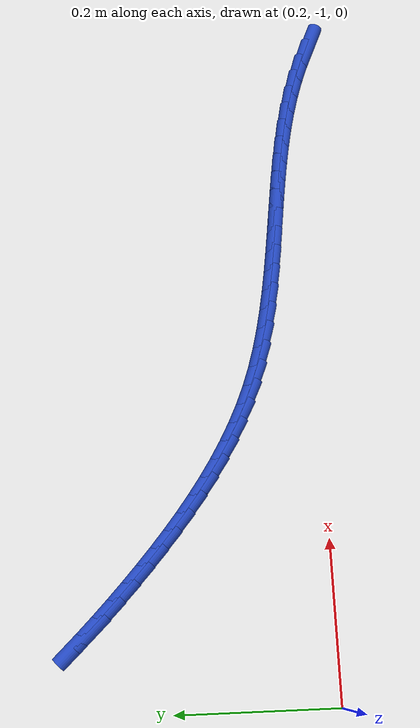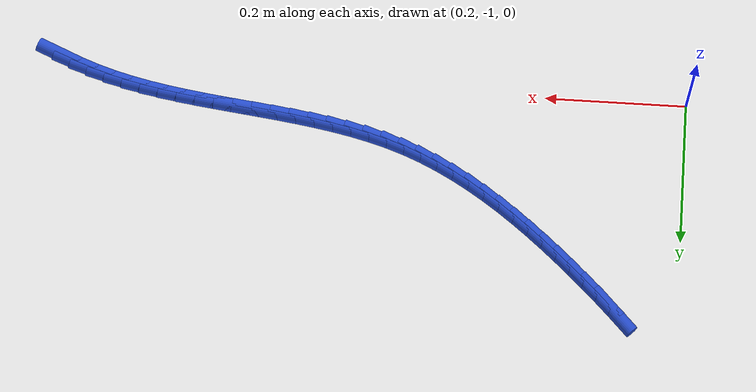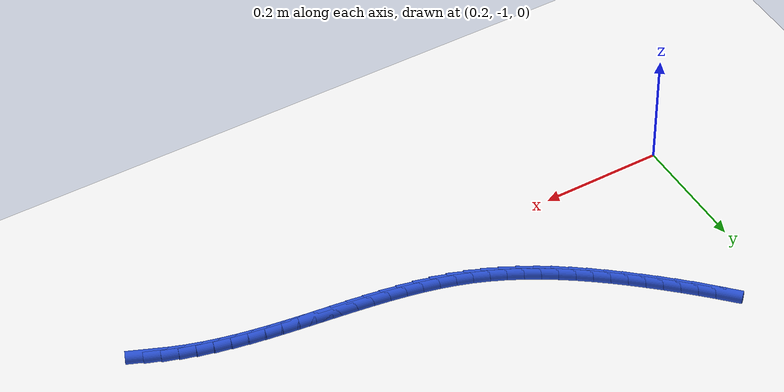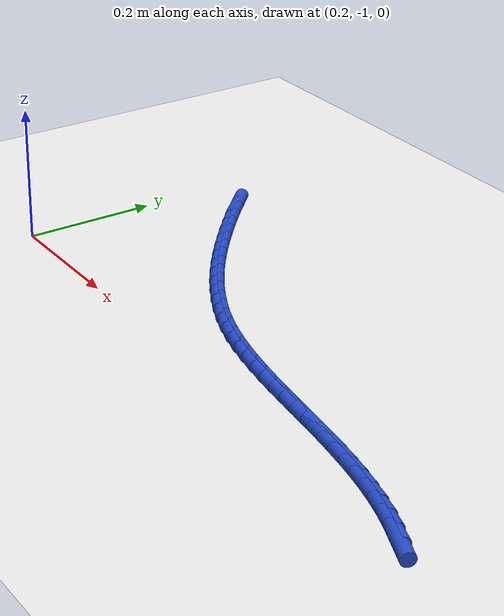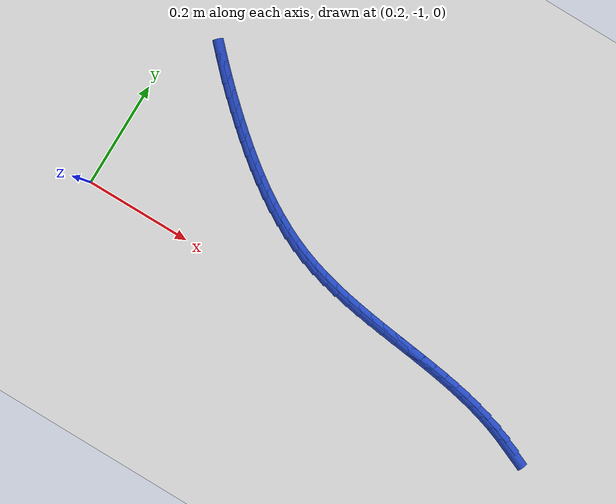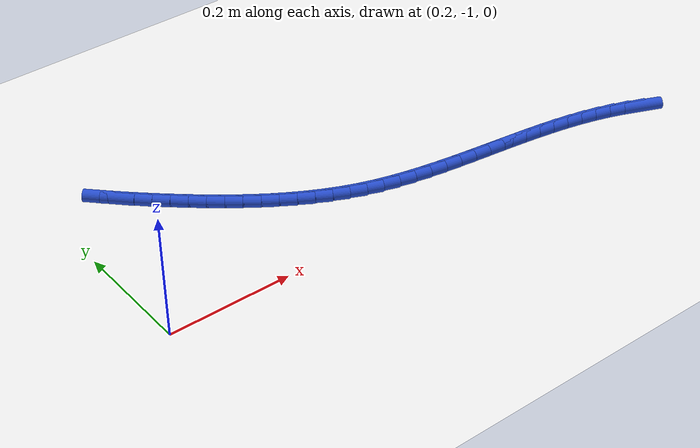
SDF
<sdf version="1.6">
 <world name="default">
  <model name="ground_plane">
   <static>1</static>
   <link name="link">
    <collision name="collision">
     <geometry><plane><normal>0 0 1</normal><size>100 100</size></plane></geometry>
     <surface><friction><ode><mu>100</mu><mu2>50</mu2></ode></friction></surface>
    </collision>
    <visual name="visual">
     <cast_shadows>0</cast_shadows>
     <geometry><plane><normal>0 0 1</normal><size>100 100</size></plane></geometry>
     <material>
      <script><uri>file://media/materials/scripts/gazebo.material</uri><name>Gazebo/WhiteGlow</name></script>
     </material>
    </visual>
   </link>
  </model>
  <model name="line">
   <link name="link_208">
    <pose>1.0852184880680888 -1.0177279663651415 0.01 0 1.57 -0.3993857675906334</pose>
    <collision name="collision">
     <geometry><cylinder><radius>0.01</radius><length>0.08</length></cylinder></geometry>
    </collision>
    <visual name="visual">
     <material>
      <script><name>Gazebo/Blue</name><uri>file://media/materials/scripts/gazebo.material</uri></script>
     </material>
     <geometry><cylinder><radius>0.01</radius><length>0.08</length></cylinder></geometry>
    </visual>
   </link>
   <link name="link_209">
    <pose>1.0610164979543173 -1.0075130474599463 0.01 0 1.57 -0.35031816591687853</pose>
    <collision name="collision">
     <geometry><cylinder><radius>0.01</radius><length>0.08</length></cylinder></geometry>
    </collision>
    <visual name="visual">
     <material>
      <script><name>Gazebo/Blue</name><uri>file://media/materials/scripts/gazebo.material</uri></script>
     </material>
     <geometry><cylinder><radius>0.01</radius><length>0.08</length></cylinder></geometry>
    </visual>
   </link>
   <link name="link_210">
    <pose>1.036431180504294 -0.9985298405195767 0.01 0 1.57 -0.30028902593777157</pose>
    <collision name="collision">
     <geometry><cylinder><radius>0.01</radius><length>0.08</length></cylinder></geometry>
    </collision>
    <visual name="visual">
     <material>
      <script><name>Gazebo/Blue</name><uri>file://media/materials/scripts/gazebo.material</uri></script>
     </material>
     <geometry><cylinder><radius>0.01</radius><length>0.08</length></cylinder></geometry>
    </visual>
   </link>
   <link name="link_211">
    <pose>1.0114152742737965 -0.9907835910969482 0.01 0 1.57 -0.25647812118471935</pose>
    <collision name="collision">
     <geometry><cylinder><radius>0.01</radius><length>0.08</length></cylinder></geometry>
    </collision>
    <visual name="visual">
     <material>
      <script><name>Gazebo/Blue</name><uri>file://media/materials/scripts/gazebo.material</uri></script>
     </material>
     <geometry><cylinder><radius>0.01</radius><length>0.08</length></cylinder></geometry>
    </visual>
   </link>
   <link name="link_212">
    <pose>0.9860175486299808 -0.9841229374097166 0.01 0 1.57 -0.2189857179221665</pose>
    <collision name="collision">
     <geometry><cylinder><radius>0.01</radius><length>0.08</length></cylinder></geometry>
    </collision>
    <visual name="visual">
     <material>
      <script><name>Gazebo/Blue</name><uri>file://media/materials/scripts/gazebo.material</uri></script>
     </material>
     <geometry><cylinder><radius>0.01</radius><length>0.08</length></cylinder></geometry>
    </visual>
   </link>
   <link name="link_213">
    <pose>0.9602868184359505 -0.9783964434806043 0.01 0 1.57 -0.1877966486971916</pose>
    <collision name="collision">
     <geometry><cylinder><radius>0.01</radius><length>0.08</length></cylinder></geometry>
    </collision>
    <visual name="visual">
     <material>
      <script><name>Gazebo/Blue</name><uri>file://media/materials/scripts/gazebo.material</uri></script>
     </material>
     <geometry><cylinder><radius>0.01</radius><length>0.08</length></cylinder></geometry>
    </visual>
   </link>
   <link name="link_214">
    <pose>0.9342718985548119 -0.9734526733323339 0.01 0 1.57 -0.1628287336390535</pose>
    <collision name="collision">
     <geometry><cylinder><radius>0.01</radius><length>0.08</length></cylinder></geometry>
    </collision>
    <visual name="visual">
     <material>
      <script><name>Gazebo/Blue</name><uri>file://media/materials/scripts/gazebo.material</uri></script>
     </material>
     <geometry><cylinder><radius>0.01</radius><length>0.08</length></cylinder></geometry>
    </visual>
   </link>
   <link name="link_215">
    <pose>0.90802160384967 -0.9691401909876283 0.01 0 1.57 -0.14396999192720275</pose>
    <collision name="collision">
     <geometry><cylinder><radius>0.01</radius><length>0.08</length></cylinder></geometry>
    </collision>
    <visual name="visual">
     <material>
      <script><name>Gazebo/Blue</name><uri>file://media/materials/scripts/gazebo.material</uri></script>
     </material>
     <geometry><cylinder><radius>0.01</radius><length>0.08</length></cylinder></geometry>
    </visual>
   </link>
   <link name="link_216">
    <pose>0.8815847491836287 -0.9653075604692101 0.01 0 1.57 -0.13110690838407318</pose>
    <collision name="collision">
     <geometry><cylinder><radius>0.01</radius><length>0.08</length></cylinder></geometry>
    </collision>
    <visual name="visual">
     <material>
      <script><name>Gazebo/Blue</name><uri>file://media/materials/scripts/gazebo.material</uri></script>
     </material>
     <geometry><cylinder><radius>0.01</radius><length>0.08</length></cylinder></geometry>
    </visual>
   </link>
   <link name="link_217">
    <pose>0.8550101494197948 -0.961803345799802 0.01 0 1.57 -0.12414426444130748</pose>
    <collision name="collision">
     <geometry><cylinder><radius>0.01</radius><length>0.08</length></cylinder></geometry>
    </collision>
    <visual name="visual">
     <material>
      <script><name>Gazebo/Blue</name><uri>file://media/materials/scripts/gazebo.material</uri></script>
     </material>
     <geometry><cylinder><radius>0.01</radius><length>0.08</length></cylinder></geometry>
    </visual>
   </link>
   <link name="link_218">
    <pose>0.828346619421272 -0.9584761110021269 0.01 0 1.57 -0.12301761922087398</pose>
    <collision name="collision">
     <geometry><cylinder><radius>0.01</radius><length>0.08</length></cylinder></geometry>
    </collision>
    <visual name="visual">
     <material>
      <script><name>Gazebo/Blue</name><uri>file://media/materials/scripts/gazebo.material</uri></script>
     </material>
     <geometry><cylinder><radius>0.01</radius><length>0.08</length></cylinder></geometry>
    </visual>
   </link>
   <link name="link_219">
    <pose>0.8016429740511667 -0.9551744200989072 0.01 0 1.57 -0.12769950275289527</pose>
    <collision name="collision">
     <geometry><cylinder><radius>0.01</radius><length>0.08</length></cylinder></geometry>
    </collision>
    <visual name="visual">
     <material>
      <script><name>Gazebo/Blue</name><uri>file://media/materials/scripts/gazebo.material</uri></script>
     </material>
     <geometry><cylinder><radius>0.01</radius><length>0.08</length></cylinder></geometry>
    </visual>
   </link>
   <link name="link_220">
    <pose>0.7749480281725829 -0.9517468371128657 0.01 0 1.57 -0.13820003435185707</pose>
    <collision name="collision">
     <geometry><cylinder><radius>0.01</radius><length>0.08</length></cylinder></geometry>
    </collision>
    <visual name="visual">
     <material>
      <script><name>Gazebo/Blue</name><uri>file://media/materials/scripts/gazebo.material</uri></script>
     </material>
     <geometry><cylinder><radius>0.01</radius><length>0.08</length></cylinder></geometry>
    </visual>
   </link>
   <link name="link_221">
    <pose>0.7483105966486272 -0.9480419260667253 0.01 0 1.57 -0.1545621959530565</pose>
    <collision name="collision">
     <geometry><cylinder><radius>0.01</radius><length>0.08</length></cylinder></geometry>
    </collision>
    <visual name="visual">
     <material>
      <script><name>Gazebo/Blue</name><uri>file://media/materials/scripts/gazebo.material</uri></script>
     </material>
     <geometry><cylinder><radius>0.01</radius><length>0.08</length></cylinder></geometry>
    </visual>
   </link>
   <link name="link_222">
    <pose>0.7217794943424032 -0.9439082509832084 0.01 0 1.57 -0.17685150422951662</pose>
    <collision name="collision">
     <geometry><cylinder><radius>0.01</radius><length>0.08</length></cylinder></geometry>
    </collision>
    <visual name="visual">
     <material>
      <script><name>Gazebo/Blue</name><uri>file://media/materials/scripts/gazebo.material</uri></script>
     </material>
     <geometry><cylinder><radius>0.01</radius><length>0.08</length></cylinder></geometry>
    </visual>
   </link>
   <link name="link_223">
    <pose>0.695403536117017 -0.939194375885038 0.01 0 1.57 -0.20513945141043055</pose>
    <collision name="collision">
     <geometry><cylinder><radius>0.01</radius><length>0.08</length></cylinder></geometry>
    </collision>
    <visual name="visual">
     <material>
      <script><name>Gazebo/Blue</name><uri>file://media/materials/scripts/gazebo.material</uri></script>
     </material>
     <geometry><cylinder><radius>0.01</radius><length>0.08</length></cylinder></geometry>
    </visual>
   </link>
   <link name="link_224">
    <pose>0.669231536835573 -0.9337488647949366 0.01 0 1.57 -0.23969594802972566</pose>
    <collision name="collision">
     <geometry><cylinder><radius>0.01</radius><length>0.08</length></cylinder></geometry>
    </collision>
    <visual name="visual">
     <material>
      <script><name>Gazebo/Blue</name><uri>file://media/materials/scripts/gazebo.material</uri></script>
     </material>
     <geometry><cylinder><radius>0.01</radius><length>0.08</length></cylinder></geometry>
    </visual>
   </link>
   <link name="link_225">
    <pose>0.6433214621800992 -0.9274165859309824 0.01 0 1.57 -0.2817392553317823</pose>
    <collision name="collision">
     <geometry><cylinder><radius>0.01</radius><length>0.08</length></cylinder></geometry>
    </collision>
    <visual name="visual">
     <material>
      <script><name>Gazebo/Blue</name><uri>file://media/materials/scripts/gazebo.material</uri></script>
     </material>
     <geometry><cylinder><radius>0.01</radius><length>0.08</length></cylinder></geometry>
    </visual>
   </link>
   <link name="link_226">
    <pose>0.6177783012527067 -0.9200234158367551 0.01 0 1.57 -0.33181541450712687</pose>
    <collision name="collision">
     <geometry><cylinder><radius>0.01</radius><length>0.08</length></cylinder></geometry>
    </collision>
    <visual name="visual">
     <material>
      <script><name>Gazebo/Blue</name><uri>file://media/materials/scripts/gazebo.material</uri></script>
     </material>
     <geometry><cylinder><radius>0.01</radius><length>0.08</length></cylinder></geometry>
    </visual>
   </link>
   <link name="link_227">
    <pose>0.5927216455417016 -0.9113900314355303 0.01 0 1.57 -0.3862266669114347</pose>
    <collision name="collision">
     <geometry><cylinder><radius>0.01</radius><length>0.08</length></cylinder></geometry>
    </collision>
    <visual name="visual">
     <material>
      <script><name>Gazebo/Blue</name><uri>file://media/materials/scripts/gazebo.material</uri></script>
     </material>
     <geometry><cylinder><radius>0.01</radius><length>0.08</length></cylinder></geometry>
    </visual>
   </link>
   <link name="link_228">
    <pose>0.5682237901390793 -0.9014279582868276 0.01 0 1.57 -0.43772712806599023</pose>
    <collision name="collision">
     <geometry><cylinder><radius>0.01</radius><length>0.08</length></cylinder></geometry>
    </collision>
    <visual name="visual">
     <material>
      <script><name>Gazebo/Blue</name><uri>file://media/materials/scripts/gazebo.material</uri></script>
     </material>
     <geometry><cylinder><radius>0.01</radius><length>0.08</length></cylinder></geometry>
    </visual>
   </link>
   <link name="link_229">
    <pose>0.5442693526158473 -0.8902171169097783 0.01 0 1.57 -0.48537059713483577</pose>
    <collision name="collision">
     <geometry><cylinder><radius>0.01</radius><length>0.08</length></cylinder></geometry>
    </collision>
    <visual name="visual">
     <material>
      <script><name>Gazebo/Blue</name><uri>file://media/materials/scripts/gazebo.material</uri></script>
     </material>
     <geometry><cylinder><radius>0.01</radius><length>0.08</length></cylinder></geometry>
    </visual>
   </link>
   <link name="link_230">
    <pose>0.5208334384001423 -0.8778556970092449 0.01 0 1.57 -0.5290758082683124</pose>
    <collision name="collision">
     <geometry><cylinder><radius>0.01</radius><length>0.08</length></cylinder></geometry>
    </collision>
    <visual name="visual">
     <material>
      <script><name>Gazebo/Blue</name><uri>file://media/materials/scripts/gazebo.material</uri></script>
     </material>
     <geometry><cylinder><radius>0.01</radius><length>0.08</length></cylinder></geometry>
    </visual>
   </link>
   <link name="link_231">
    <pose>0.49789115292009734 -0.8644418882900877 0.01 0 1.57 -0.5688374901933455</pose>
    <collision name="collision">
     <geometry><cylinder><radius>0.01</radius><length>0.08</length></cylinder></geometry>
    </collision>
    <visual name="visual">
     <material>
      <script><name>Gazebo/Blue</name><uri>file://media/materials/scripts/gazebo.material</uri></script>
     </material>
     <geometry><cylinder><radius>0.01</radius><length>0.08</length></cylinder></geometry>
    </visual>
   </link>
   <link name="link_232">
    <pose>0.4754176016038487 -0.8500738804571687 0.01 0 1.57 -0.6047057895562514</pose>
    <collision name="collision">
     <geometry><cylinder><radius>0.01</radius><length>0.08</length></cylinder></geometry>
    </collision>
    <visual name="visual">
     <material>
      <script><name>Gazebo/Blue</name><uri>file://media/materials/scripts/gazebo.material</uri></script>
     </material>
     <geometry><cylinder><radius>0.01</radius><length>0.08</length></cylinder></geometry>
    </visual>
   </link>
   <link name="link_233">
    <pose>0.45338788987952994 -0.8348498632153487 0.01 0 1.57 -0.6367673620179263</pose>
    <collision name="collision">
     <geometry><cylinder><radius>0.01</radius><length>0.08</length></cylinder></geometry>
    </collision>
    <visual name="visual">
     <material>
      <script><name>Gazebo/Blue</name><uri>file://media/materials/scripts/gazebo.material</uri></script>
     </material>
     <geometry><cylinder><radius>0.01</radius><length>0.08</length></cylinder></geometry>
    </visual>
   </link>
   <link name="link_234">
    <pose>0.43177712317527717 -0.81886802626949 0.01 0 1.57 -0.6651291004185453</pose>
    <collision name="collision">
     <geometry><cylinder><radius>0.01</radius><length>0.08</length></cylinder></geometry>
    </collision>
    <visual name="visual">
     <material>
      <script><name>Gazebo/Blue</name><uri>file://media/materials/scripts/gazebo.material</uri></script>
     </material>
     <geometry><cylinder><radius>0.01</radius><length>0.08</length></cylinder></geometry>
    </visual>
   </link>
   <link name="link_235">
    <pose>0.41056040691922463 -0.802226559324453 0.01 0 1.57 -0.6899047801897292</pose>
    <collision name="collision">
     <geometry><cylinder><radius>0.01</radius><length>0.08</length></cylinder></geometry>
    </collision>
    <visual name="visual">
     <material>
      <script><name>Gazebo/Blue</name><uri>file://media/materials/scripts/gazebo.material</uri></script>
     </material>
     <geometry><cylinder><radius>0.01</radius><length>0.08</length></cylinder></geometry>
    </visual>
   </link>
   <link name="link_236">
    <pose>0.3897128465395063 -0.785023652085099 0.01 0 1.57 -0.7112044575251838</pose>
    <collision name="collision">
     <geometry><cylinder><radius>0.01</radius><length>0.08</length></cylinder></geometry>
    </collision>
    <visual name="visual">
     <material>
      <script><name>Gazebo/Blue</name><uri>file://media/materials/scripts/gazebo.material</uri></script>
     </material>
     <geometry><cylinder><radius>0.01</radius><length>0.08</length></cylinder></geometry>
    </visual>
   </link>
   <link name="link_237">
    <pose>0.36920954746425844 -0.7673574942562904 0.01 0 1.57 -0.7291322563339169</pose>
    <collision name="collision">
     <geometry><cylinder><radius>0.01</radius><length>0.08</length></cylinder></geometry>
    </collision>
    <visual name="visual">
     <material>
      <script><name>Gazebo/Blue</name><uri>file://media/materials/scripts/gazebo.material</uri></script>
     </material>
     <geometry><cylinder><radius>0.01</radius><length>0.08</length></cylinder></geometry>
    </visual>
   </link>
   <link name="link_238">
    <pose>0.3490256924751145 -0.7493261254610233 0.01 0 1.57 -0.7450151562828718</pose>
    <collision name="collision">
     <geometry><cylinder><radius>0.01</radius><length>0.08</length></cylinder></geometry>
    </collision>
    <visual name="visual">
     <material>
      <script><name>Gazebo/Blue</name><uri>file://media/materials/scripts/gazebo.material</uri></script>
     </material>
     <geometry><cylinder><radius>0.01</radius><length>0.08</length></cylinder></geometry>
    </visual>
   </link>
   <link name="link_239">
    <pose>0.3291524848591113 -0.7309965022127568 0.01 0 1.57 -0.7616671094289268</pose>
    <collision name="collision">
     <geometry><cylinder><radius>0.01</radius><length>0.08</length></cylinder></geometry>
    </collision>
    <visual name="visual">
     <material>
      <script><name>Gazebo/Blue</name><uri>file://media/materials/scripts/gazebo.material</uri></script>
     </material>
     <geometry><cylinder><radius>0.01</radius><length>0.08</length></cylinder></geometry>
    </visual>
   </link>
   <link name="link_240">
    <pose>0.30961668768369516 -0.712366587661624 0.01 0 1.57 -0.7794856786751</pose>
    <collision name="collision">
     <geometry><cylinder><radius>0.01</radius><length>0.08</length></cylinder></geometry>
    </collision>
    <visual name="visual">
     <material>
      <script><name>Gazebo/Blue</name><uri>file://media/materials/scripts/gazebo.material</uri></script>
     </material>
     <geometry><cylinder><radius>0.01</radius><length>0.08</length></cylinder></geometry>
    </visual>
   </link>
   <link name="link_241">
    <pose>0.29044984708685034 -0.693425064806999 0.01 0 1.57 -0.7984949686526405</pose>
    <collision name="collision">
     <geometry><cylinder><radius>0.01</radius><length>0.08</length></cylinder></geometry>
    </collision>
    <visual name="visual">
     <material>
      <script><name>Gazebo/Blue</name><uri>file://media/materials/scripts/gazebo.material</uri></script>
     </material>
     <geometry><cylinder><radius>0.01</radius><length>0.08</length></cylinder></geometry>
    </visual>
   </link>
  </model>
 </world>
</sdf>
